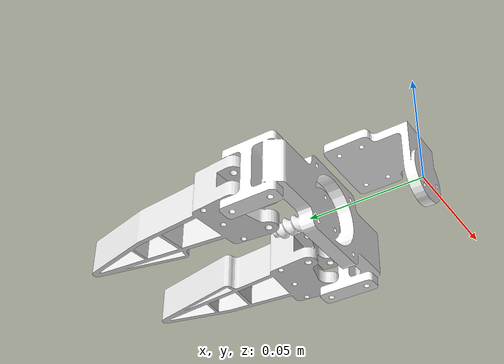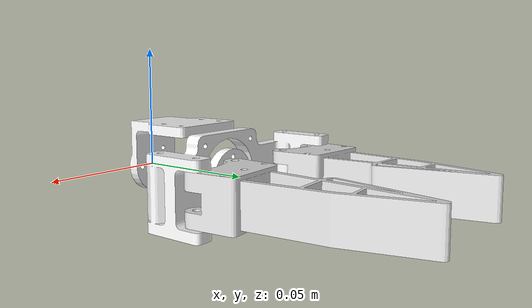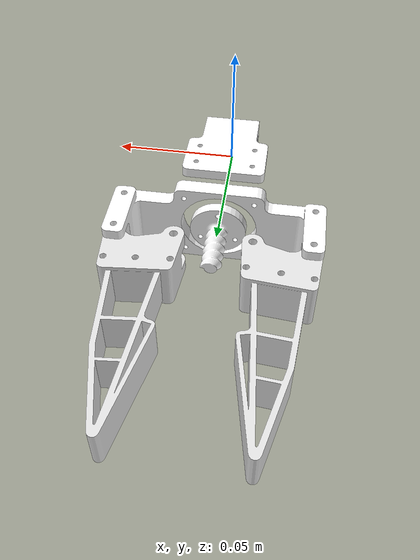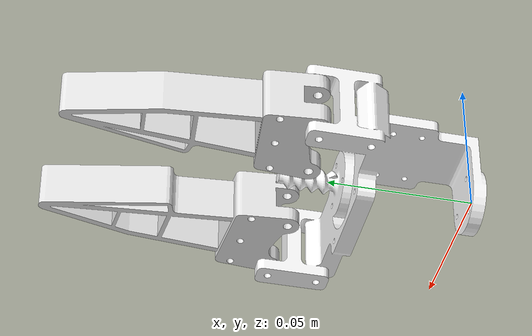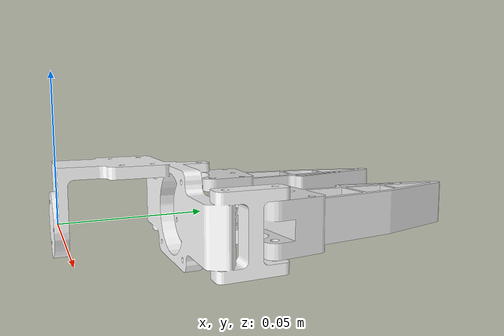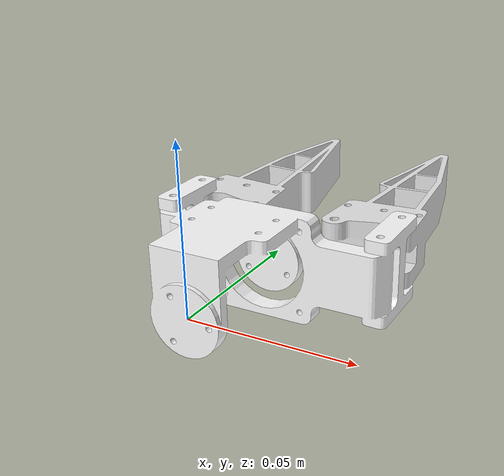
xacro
<?xml version="1.0"?>
<robot xmlns:xacro="http://www.ros.org/wiki/xacro">
  <link
    name="link6">
    <inertial>
      <origin
        xyz="-1.73161952832235E-08 0.030376154976061 0.00157120108851105"
        rpy="0 0 0" />
      <mass
        value="0.047698791752954" />
      <inertia
        ixx="7.72284261455913E-06"
        ixy="3.00758647890756E-11"
        ixz="4.70631210623446E-13"
        iyy="1.33650599715037E-05"
        iyz="-3.83488938701045E-07"
        izz="1.25814742515456E-05" />
    </inertial>
    <visual>
      <origin
        xyz="0 0 0"
        rpy="0 0 0" />
      <geometry>
        <mesh
          filename="package://dummy_description/meshes/effector/EB-GP-01/link6.STL" />
      </geometry>
      <material
        name="">
        <color
          rgba="1 1 1 1" />
      </material>
    </visual>
    <collision>
      <origin
        xyz="0 0 0"
        rpy="0 0 0" />
      <geometry>
        <mesh
          filename="package://dummy_description/meshes/effector/EB-GP-01/link6.STL" />
      </geometry>
    </collision>
  </link>
  <link
    name="link7">
    <inertial>
      <origin
        xyz="0.00152612188957103 0.0176930965044017 0.00939698783663878"
        rpy="0 0 0" />
      <mass
        value="0.012637168125042" />
      <inertia
        ixx="3.96285079028416E-06"
        ixy="1.42866720295799E-07"
        ixz="-1.82056467439345E-09"
        iyy="1.0694147523531E-06"
        iyz="1.44746708205008E-08"
        izz="4.42805634971276E-06" />
    </inertial>
    <visual>
      <origin
        xyz="0 0 0"
        rpy="0 0 0" />
      <geometry>
        <mesh
          filename="package://dummy_description/meshes/effector/EB-GP-01/link7.STL" />
      </geometry>
      <material
        name="">
        <color
          rgba="0.9 0.9 0.9 1" />
      </material>
    </visual>
    <collision>
      <origin
        xyz="0 0 0"
        rpy="0 0 0" />
      <geometry>
        <mesh
          filename="package://dummy_description/meshes/effector/EB-GP-01/link7.STL" />
      </geometry>
    </collision>
  </link>
  <link name="gripper_base"/>

  <joint
    name="joint7"
    type="revolute">
    <origin
      xyz="0.028034 0.070463 0.01"
      rpy="3.14 0 -3.0526" />
    <parent
      link="link6" />
    <child
      link="gripper_base" />
    <axis
      xyz="0 0 -1" />
    <limit
      lower="-10"
      upper="10"
      effort="10"
      velocity="10" />
  </joint>

  <joint
    name="left_gripper_joint"
    type="revolute">
    <origin
      xyz="0.028034 0.070463 0.01"
      rpy="3.14 0 -3.0526" />
    <parent
      link="link6" />
    <child
      link="link7" />
    <axis
      xyz="0 0 -1" />
    <limit
      lower="-0.27"
      upper="0.27"
      effort="10"
      velocity="10" />
    <mimic
      joint="joint7"
      multiplier="0.03"
      offset="0"/>
  </joint>
  <link
    name="link8">
    <inertial>
      <origin
        xyz="0.00152612188957089 0.0176930965044017 -0.00810301216336123"
        rpy="0 0 0" />
      <mass
        value="0.012637168125042" />
      <inertia
        ixx="3.96285079028415E-06"
        ixy="1.42866720295798E-07"
        ixz="-1.82056467438641E-09"
        iyy="1.0694147523531E-06"
        iyz="1.44746708205124E-08"
        izz="4.42805634971275E-06" />
    </inertial>
    <visual>
      <origin
        xyz="0 0 0"
        rpy="0 0 0" />
      <geometry>
        <mesh
          filename="package://dummy_description/meshes/effector/EB-GP-01/link8.STL" />
      </geometry>
      <material
        name="">
        <color
          rgba="0.9 0.9 0.9 1" />
      </material>
    </visual>
    <collision>
      <origin
        xyz="0 0 0"
        rpy="0 0 0" />
      <geometry>
        <mesh
          filename="package://dummy_description/meshes/effector/EB-GP-01/link8.STL" />
      </geometry>
    </collision>
  </link>
  <joint
    name="right_gripper_joint"
    type="revolute">
    <origin
      xyz="-0.028034 0.070463 0.0085"
      rpy="0 0 -0.089018" />
    <parent
      link="link6" />
    <child
      link="link8" />
    <axis
      xyz="0 0 1" />
    <limit
      lower="-0.27"
      upper="0.27"
      effort="10"
      velocity="10" />
    <mimic
      joint="joint7"
      multiplier="-0.03"
      offset="0"/>
  </joint>

  <link name="tool0">
    <inertial>
      <origin xyz="0 0 0" rpy="0 0 0"/>
      <mass value="0.1"/>
      <inertia ixx="0.0001" ixy="0" ixz="0" iyy="0.0001" iyz="0" izz="0.0001"/>
    </inertial>
  </link>
  <joint name="tool_joint" type="fixed">
    <parent link="link6"/>
    <child link="tool0"/>
    <origin xyz="0 0 0" rpy="1.57 1.57 0"/>
  </joint>
</robot>
